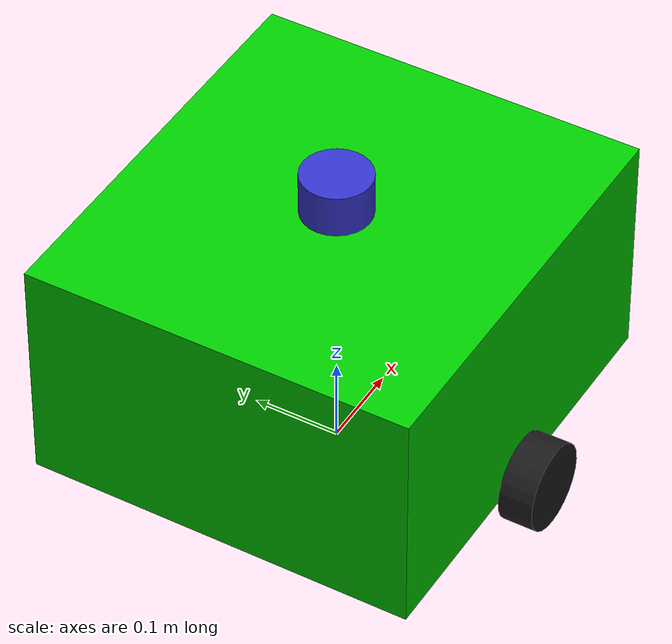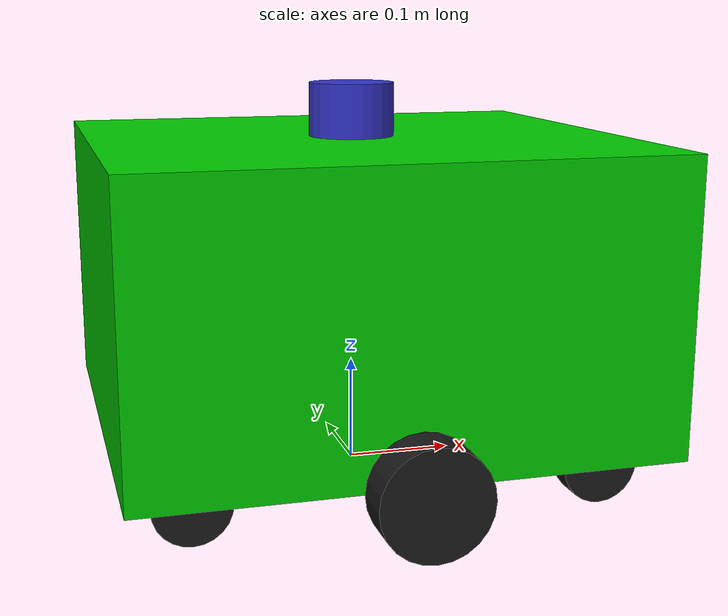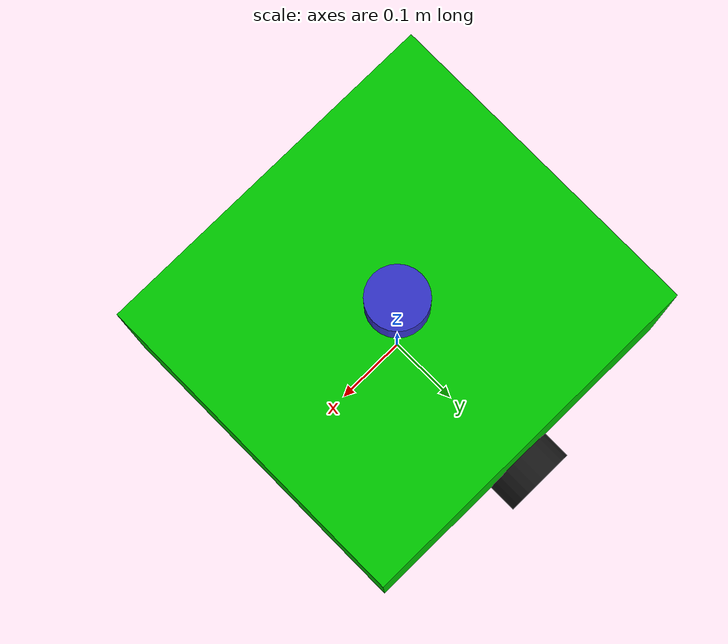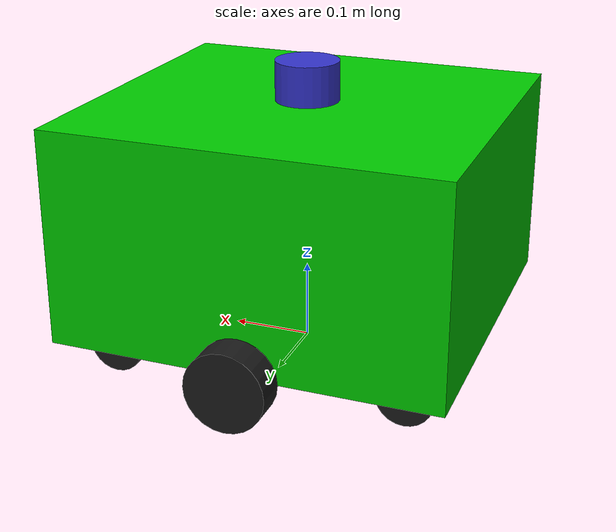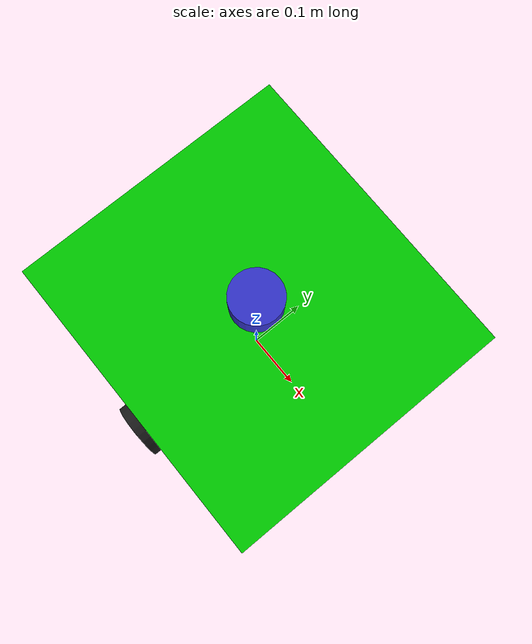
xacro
<?xml version="1.0"?>
<robot xmlns:xacro="http://www.ros.org/wiki/xacro" name="amr_robot">

  <!-- ==================== PROPERTIES ==================== -->
  <xacro:property name="base_length" value="0.49"/>
  <xacro:property name="base_width"  value="0.45"/>
  <xacro:property name="base_height" value="0.27"/>

  <xacro:property name="wheel_radius" value="0.05"/>
  <xacro:property name="wheel_width"  value="0.04"/>

  <!-- Caster dimensions reduced -->
  <xacro:property name="caster_radius" value="0.035"/>
  <xacro:property name="caster_width"  value="0.025"/>
  <!-- Distance to move casters inwards from the edges -->
  <xacro:property name="caster_offset_x" value="0.06"/>
  <xacro:property name="caster_offset_y" value="0.06"/>

  <xacro:property name="lidar_radius" value="0.04"/>
  <xacro:property name="lidar_length" value="0.05"/>

  <!-- ==================== MATERIALS ==================== -->
  <!-- 1.0 Alpha ensures it is completely solid, not transparent -->
  <material name="green"> <color rgba="0.0 0.8 0.0 1.0"/> </material>
  <material name="black"> <color rgba="0.1 0.1 0.1 1.0"/> </material>
  <material name="blue">  <color rgba="0.2 0.2 0.8 1.0"/> </material>

  <!-- ==================== BASE MACROS ==================== -->
  <link name="base_footprint"/>

  <link name="base_link">
    <visual>
      <origin xyz="0 0 0" rpy="0 0 0"/>
      <geometry>
        <box size="${base_length} ${base_width} ${base_height}"/>
      </geometry>
      <material name="green"/>
    </visual>
    <collision>
      <geometry>
        <box size="${base_length} ${base_width} ${base_height}"/>
      </geometry>
    </collision>
    <inertial>
      <mass value="15.0"/>
      <origin xyz="0 0 0"/>
      <inertia ixx="0.344" ixy="0.0" ixz="0.0" iyy="0.391" iyz="0.0" izz="0.553"/>
    </inertial>
  </link>

  <joint name="base_joint" type="fixed">
    <parent link="base_footprint"/>
    <child link="base_link"/>
    <origin xyz="0 0 ${wheel_radius + (base_height/2)}" rpy="0 0 0"/>
  </joint>

  <!-- ==================== MAIN WHEEL MACRO ==================== -->
  <xacro:macro name="drive_wheel" params="prefix y_reflect">
    <link name="${prefix}_wheel">
      <visual>
        <geometry>
          <cylinder radius="${wheel_radius}" length="${wheel_width}"/>
        </geometry>
        <material name="black"/>
      </visual>
      <collision>
        <geometry>
          <cylinder radius="${wheel_radius}" length="${wheel_width}"/>
        </geometry>
      </collision>
    </link>

    <joint name="${prefix}_wheel_joint" type="continuous">
      <parent link="base_link"/>
      <child link="${prefix}_wheel"/>
      <origin xyz="0 ${(base_width/2 + wheel_width/2) * y_reflect} ${-base_height/2}" rpy="-1.570796 0 0"/>
      <axis xyz="0 0 1"/>
    </joint>
  </xacro:macro>

  <xacro:drive_wheel prefix="left"  y_reflect="1" />
  <xacro:drive_wheel prefix="right" y_reflect="-1" />

  <!-- ==================== 4 CASTER WHEELS MACRO ==================== -->
  <xacro:macro name="caster_wheel" params="prefix x_reflect y_reflect">
    <link name="${prefix}_caster">
      <visual>
        <geometry>
          <cylinder radius="${caster_radius}" length="${caster_width}"/>
        </geometry>
        <material name="black"/>
      </visual>
      <collision>
        <geometry>
          <cylinder radius="${caster_radius}" length="${caster_width}"/>
        </geometry>
      </collision>
    </link>

    <joint name="${prefix}_caster_joint" type="fixed">
      <parent link="base_link"/>
      <child link="${prefix}_caster"/>
      <!-- X & Y are pulled inside using the offset variables.
           Z is calculated so the smaller casters still touch the floor exactly like the main wheels. -->
      <origin xyz="${(base_length/2 - caster_offset_x) * x_reflect} ${(base_width/2 - caster_offset_y) * y_reflect} ${-base_height/2 - (wheel_radius - caster_radius)}" rpy="-1.570796 0 0"/>
    </joint>
  </xacro:macro>

  <!-- Instantiating 4 Casters -->
  <xacro:caster_wheel prefix="front_left"  x_reflect="1"  y_reflect="1" />
  <xacro:caster_wheel prefix="front_right" x_reflect="1"  y_reflect="-1" />
  <xacro:caster_wheel prefix="rear_left"   x_reflect="-1" y_reflect="1" />
  <xacro:caster_wheel prefix="rear_right"  x_reflect="-1" y_reflect="-1" />

  <!-- ==================== LIDAR ==================== -->
  <link name="lidar_link">
    <visual>
      <geometry>
        <cylinder radius="${lidar_radius}" length="${lidar_length}"/>
      </geometry>
      <material name="blue"/>
    </visual>
    <collision>
      <geometry>
        <cylinder radius="${lidar_radius}" length="${lidar_length}"/>
      </geometry>
    </collision>
  </link>

  <joint name="lidar_joint" type="fixed">
    <parent link="base_link"/>
    <child link="lidar_link"/>
    <origin xyz="0 0 ${base_height/2 + lidar_length/2}" rpy="0 0 0"/>
  </joint>

</robot>
